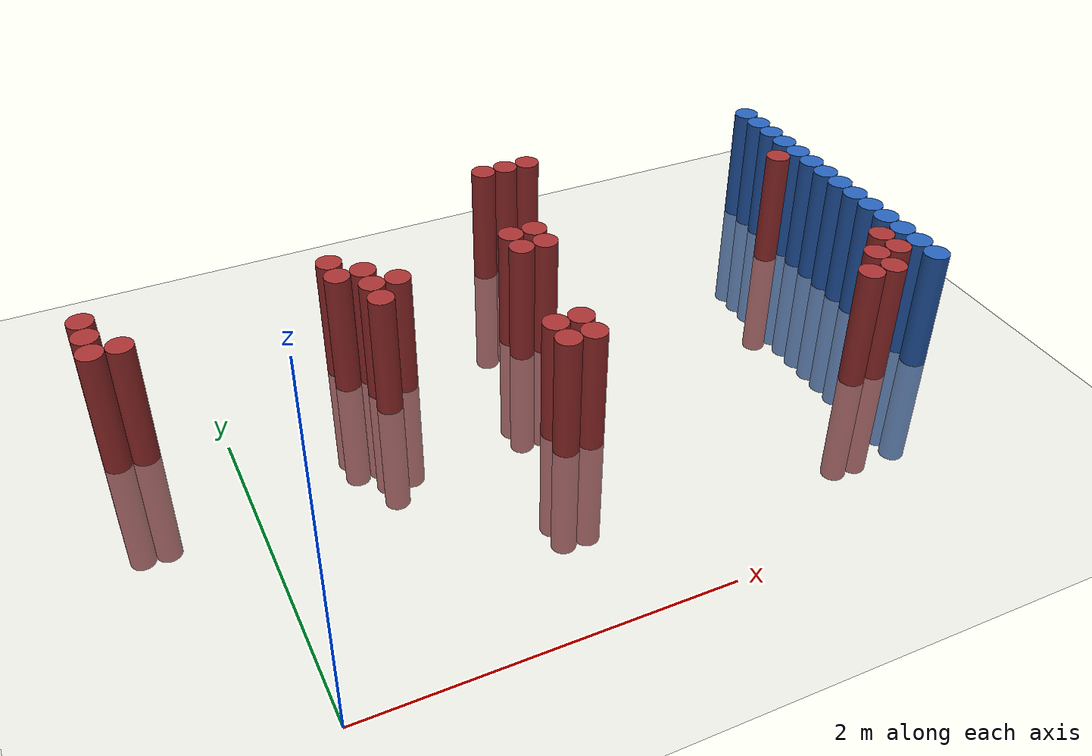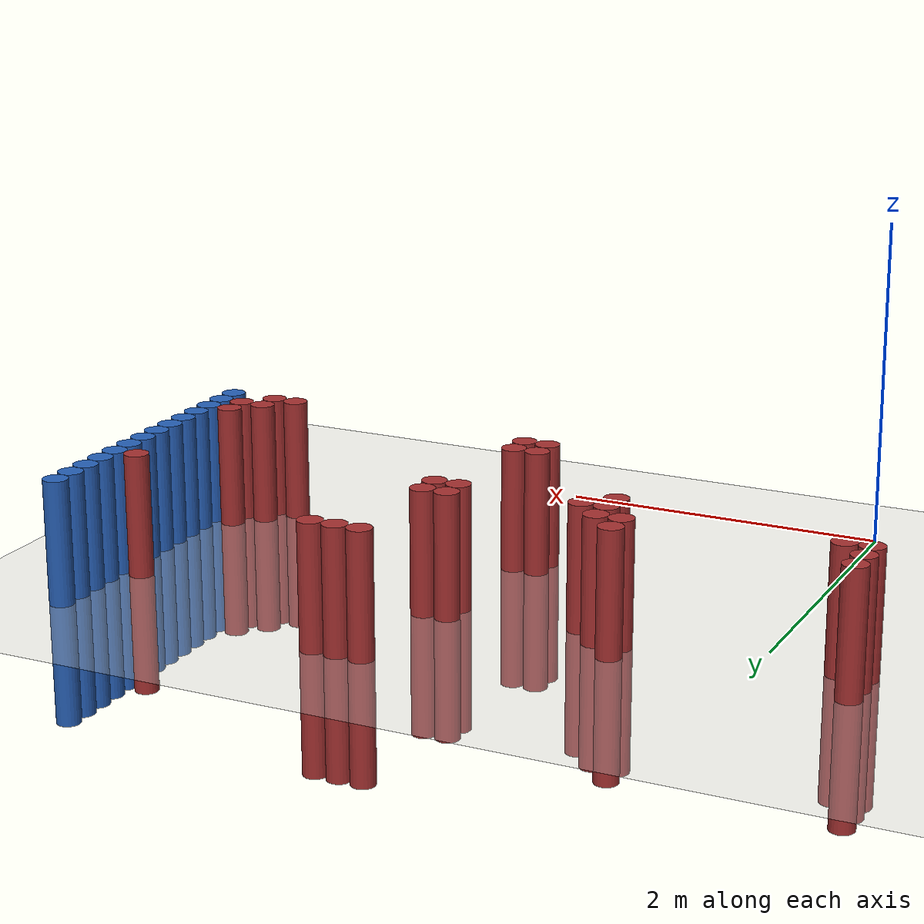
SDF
<sdf version="1.6">
 <world name="default">
  <model name="ground_plane">
   <static>1</static>
   <link name="link">
    <collision name="collision">
     <geometry><plane><normal>0 0 1</normal><size>100 100</size></plane></geometry>
     <surface><friction><ode><mu>100</mu><mu2>50</mu2></ode></friction></surface>
    </collision>
    <visual name="visual">
     <cast_shadows>0</cast_shadows>
     <geometry><plane><normal>0 0 1</normal><size>100 100</size></plane></geometry>
     <material>
      <script><uri>file://media/materials/scripts/gazebo.material</uri><name>Gazebo/Grey</name></script>
     </material>
    </visual>
   </link>
  </model>
  <model name="unit_cylinder_130">
   <static>1</static>
   <pose>3.925000 1.225000 0.000000 0.000000 0.000000 0.000000</pose>
   <link name="link">
    <inertial>
     <mass>1</mass>
     <inertia><ixx>0.145833</ixx><ixy>0</ixy><ixz>0</ixz><iyy>0.145833</iyy><iyz>0</iyz><izz>0.125</izz></inertia>
    </inertial>
    <collision name="collision">
     <geometry><cylinder><radius>0.075000</radius><length>1.5</length></cylinder></geometry>
    </collision>
    <visual name="visual">
     <geometry><cylinder><radius>0.075000</radius><length>1.5</length></cylinder></geometry>
     <material>
      <ambient>0.152000 0.379000 0.720000 1</ambient>
      <diffuse>0.152000 0.379000 0.720000 1</diffuse>
     </material>
     <material>
      <script><name>Gazebo/Grey</name><uri>file://media/materials/scripts/gazebo.material</uri></script>
     </material>
    </visual>
   </link>
  </model>
  <model name="unit_cylinder_132">
   <static>1</static>
   <pose>3.925000 1.375000 0.000000 0.000000 0.000000 0.000000</pose>
   <link name="link">
    <inertial>
     <mass>1</mass>
     <inertia><ixx>0.145833</ixx><ixy>0</ixy><ixz>0</ixz><iyy>0.145833</iyy><iyz>0</iyz><izz>0.125</izz></inertia>
    </inertial>
    <collision name="collision">
     <geometry><cylinder><radius>0.075000</radius><length>1.5</length></cylinder></geometry>
    </collision>
    <visual name="visual">
     <geometry><cylinder><radius>0.075000</radius><length>1.5</length></cylinder></geometry>
     <material>
      <ambient>0.152000 0.379000 0.720000 1</ambient>
      <diffuse>0.152000 0.379000 0.720000 1</diffuse>
     </material>
     <material>
      <script><name>Gazebo/Grey</name><uri>file://media/materials/scripts/gazebo.material</uri></script>
     </material>
    </visual>
   </link>
  </model>
  <model name="unit_cylinder_134">
   <static>1</static>
   <pose>3.925000 1.525000 0.000000 0.000000 0.000000 0.000000</pose>
   <link name="link">
    <inertial>
     <mass>1</mass>
     <inertia><ixx>0.145833</ixx><ixy>0</ixy><ixz>0</ixz><iyy>0.145833</iyy><iyz>0</iyz><izz>0.125</izz></inertia>
    </inertial>
    <collision name="collision">
     <geometry><cylinder><radius>0.075000</radius><length>1.5</length></cylinder></geometry>
    </collision>
    <visual name="visual">
     <geometry><cylinder><radius>0.075000</radius><length>1.5</length></cylinder></geometry>
     <material>
      <ambient>0.152000 0.379000 0.720000 1</ambient>
      <diffuse>0.152000 0.379000 0.720000 1</diffuse>
     </material>
     <material>
      <script><name>Gazebo/Grey</name><uri>file://media/materials/scripts/gazebo.material</uri></script>
     </material>
    </visual>
   </link>
  </model>
  <model name="unit_cylinder_136">
   <static>1</static>
   <pose>3.925000 1.675000 0.000000 0.000000 0.000000 0.000000</pose>
   <link name="link">
    <inertial>
     <mass>1</mass>
     <inertia><ixx>0.145833</ixx><ixy>0</ixy><ixz>0</ixz><iyy>0.145833</iyy><iyz>0</iyz><izz>0.125</izz></inertia>
    </inertial>
    <collision name="collision">
     <geometry><cylinder><radius>0.075000</radius><length>1.5</length></cylinder></geometry>
    </collision>
    <visual name="visual">
     <geometry><cylinder><radius>0.075000</radius><length>1.5</length></cylinder></geometry>
     <material>
      <ambient>0.152000 0.379000 0.720000 1</ambient>
      <diffuse>0.152000 0.379000 0.720000 1</diffuse>
     </material>
     <material>
      <script><name>Gazebo/Grey</name><uri>file://media/materials/scripts/gazebo.material</uri></script>
     </material>
    </visual>
   </link>
  </model>
  <model name="unit_cylinder_138">
   <static>1</static>
   <pose>3.925000 1.825000 0.000000 0.000000 0.000000 0.000000</pose>
   <link name="link">
    <inertial>
     <mass>1</mass>
     <inertia><ixx>0.145833</ixx><ixy>0</ixy><ixz>0</ixz><iyy>0.145833</iyy><iyz>0</iyz><izz>0.125</izz></inertia>
    </inertial>
    <collision name="collision">
     <geometry><cylinder><radius>0.075000</radius><length>1.5</length></cylinder></geometry>
    </collision>
    <visual name="visual">
     <geometry><cylinder><radius>0.075000</radius><length>1.5</length></cylinder></geometry>
     <material>
      <ambient>0.152000 0.379000 0.720000 1</ambient>
      <diffuse>0.152000 0.379000 0.720000 1</diffuse>
     </material>
     <material>
      <script><name>Gazebo/Grey</name><uri>file://media/materials/scripts/gazebo.material</uri></script>
     </material>
    </visual>
   </link>
  </model>
  <model name="unit_cylinder_140">
   <static>1</static>
   <pose>3.925000 1.975000 0.000000 0.000000 0.000000 0.000000</pose>
   <link name="link">
    <inertial>
     <mass>1</mass>
     <inertia><ixx>0.145833</ixx><ixy>0</ixy><ixz>0</ixz><iyy>0.145833</iyy><iyz>0</iyz><izz>0.125</izz></inertia>
    </inertial>
    <collision name="collision">
     <geometry><cylinder><radius>0.075000</radius><length>1.5</length></cylinder></geometry>
    </collision>
    <visual name="visual">
     <geometry><cylinder><radius>0.075000</radius><length>1.5</length></cylinder></geometry>
     <material>
      <ambient>0.152000 0.379000 0.720000 1</ambient>
      <diffuse>0.152000 0.379000 0.720000 1</diffuse>
     </material>
     <material>
      <script><name>Gazebo/Grey</name><uri>file://media/materials/scripts/gazebo.material</uri></script>
     </material>
    </visual>
   </link>
  </model>
  <model name="unit_cylinder_142">
   <static>1</static>
   <pose>3.925000 2.125000 0.000000 0.000000 0.000000 0.000000</pose>
   <link name="link">
    <inertial>
     <mass>1</mass>
     <inertia><ixx>0.145833</ixx><ixy>0</ixy><ixz>0</ixz><iyy>0.145833</iyy><iyz>0</iyz><izz>0.125</izz></inertia>
    </inertial>
    <collision name="collision">
     <geometry><cylinder><radius>0.075000</radius><length>1.5</length></cylinder></geometry>
    </collision>
    <visual name="visual">
     <geometry><cylinder><radius>0.075000</radius><length>1.5</length></cylinder></geometry>
     <material>
      <ambient>0.152000 0.379000 0.720000 1</ambient>
      <diffuse>0.152000 0.379000 0.720000 1</diffuse>
     </material>
     <material>
      <script><name>Gazebo/Grey</name><uri>file://media/materials/scripts/gazebo.material</uri></script>
     </material>
    </visual>
   </link>
  </model>
  <model name="unit_cylinder_144">
   <static>1</static>
   <pose>3.925000 2.275000 0.000000 0.000000 0.000000 0.000000</pose>
   <link name="link">
    <inertial>
     <mass>1</mass>
     <inertia><ixx>0.145833</ixx><ixy>0</ixy><ixz>0</ixz><iyy>0.145833</iyy><iyz>0</iyz><izz>0.125</izz></inertia>
    </inertial>
    <collision name="collision">
     <geometry><cylinder><radius>0.075000</radius><length>1.5</length></cylinder></geometry>
    </collision>
    <visual name="visual">
     <geometry><cylinder><radius>0.075000</radius><length>1.5</length></cylinder></geometry>
     <material>
      <ambient>0.152000 0.379000 0.720000 1</ambient>
      <diffuse>0.152000 0.379000 0.720000 1</diffuse>
     </material>
     <material>
      <script><name>Gazebo/Grey</name><uri>file://media/materials/scripts/gazebo.material</uri></script>
     </material>
    </visual>
   </link>
  </model>
  <model name="unit_cylinder_146">
   <static>1</static>
   <pose>3.925000 2.425000 0.000000 0.000000 0.000000 0.000000</pose>
   <link name="link">
    <inertial>
     <mass>1</mass>
     <inertia><ixx>0.145833</ixx><ixy>0</ixy><ixz>0</ixz><iyy>0.145833</iyy><iyz>0</iyz><izz>0.125</izz></inertia>
    </inertial>
    <collision name="collision">
     <geometry><cylinder><radius>0.075000</radius><length>1.5</length></cylinder></geometry>
    </collision>
    <visual name="visual">
     <geometry><cylinder><radius>0.075000</radius><length>1.5</length></cylinder></geometry>
     <material>
      <ambient>0.152000 0.379000 0.720000 1</ambient>
      <diffuse>0.152000 0.379000 0.720000 1</diffuse>
     </material>
     <material>
      <script><name>Gazebo/Grey</name><uri>file://media/materials/scripts/gazebo.material</uri></script>
     </material>
    </visual>
   </link>
  </model>
  <model name="unit_cylinder_148">
   <static>1</static>
   <pose>3.925000 2.575000 0.000000 0.000000 0.000000 0.000000</pose>
   <link name="link">
    <inertial>
     <mass>1</mass>
     <inertia><ixx>0.145833</ixx><ixy>0</ixy><ixz>0</ixz><iyy>0.145833</iyy><iyz>0</iyz><izz>0.125</izz></inertia>
    </inertial>
    <collision name="collision">
     <geometry><cylinder><radius>0.075000</radius><length>1.5</length></cylinder></geometry>
    </collision>
    <visual name="visual">
     <geometry><cylinder><radius>0.075000</radius><length>1.5</length></cylinder></geometry>
     <material>
      <ambient>0.152000 0.379000 0.720000 1</ambient>
      <diffuse>0.152000 0.379000 0.720000 1</diffuse>
     </material>
     <material>
      <script><name>Gazebo/Grey</name><uri>file://media/materials/scripts/gazebo.material</uri></script>
     </material>
    </visual>
   </link>
  </model>
  <model name="unit_cylinder_150">
   <static>1</static>
   <pose>3.925000 2.725000 0.000000 0.000000 0.000000 0.000000</pose>
   <link name="link">
    <inertial>
     <mass>1</mass>
     <inertia><ixx>0.145833</ixx><ixy>0</ixy><ixz>0</ixz><iyy>0.145833</iyy><iyz>0</iyz><izz>0.125</izz></inertia>
    </inertial>
    <collision name="collision">
     <geometry><cylinder><radius>0.075000</radius><length>1.5</length></cylinder></geometry>
    </collision>
    <visual name="visual">
     <geometry><cylinder><radius>0.075000</radius><length>1.5</length></cylinder></geometry>
     <material>
      <ambient>0.152000 0.379000 0.720000 1</ambient>
      <diffuse>0.152000 0.379000 0.720000 1</diffuse>
     </material>
     <material>
      <script><name>Gazebo/Grey</name><uri>file://media/materials/scripts/gazebo.material</uri></script>
     </material>
    </visual>
   </link>
  </model>
  <model name="unit_cylinder_152">
   <static>1</static>
   <pose>3.925000 2.875000 0.000000 0.000000 0.000000 0.000000</pose>
   <link name="link">
    <inertial>
     <mass>1</mass>
     <inertia><ixx>0.145833</ixx><ixy>0</ixy><ixz>0</ixz><iyy>0.145833</iyy><iyz>0</iyz><izz>0.125</izz></inertia>
    </inertial>
    <collision name="collision">
     <geometry><cylinder><radius>0.075000</radius><length>1.5</length></cylinder></geometry>
    </collision>
    <visual name="visual">
     <geometry><cylinder><radius>0.075000</radius><length>1.5</length></cylinder></geometry>
     <material>
      <ambient>0.152000 0.379000 0.720000 1</ambient>
      <diffuse>0.152000 0.379000 0.720000 1</diffuse>
     </material>
     <material>
      <script><name>Gazebo/Grey</name><uri>file://media/materials/scripts/gazebo.material</uri></script>
     </material>
    </visual>
   </link>
  </model>
  <model name="unit_cylinder_154">
   <static>1</static>
   <pose>3.925000 3.025000 0.000000 0.000000 0.000000 0.000000</pose>
   <link name="link">
    <inertial>
     <mass>1</mass>
     <inertia><ixx>0.145833</ixx><ixy>0</ixy><ixz>0</ixz><iyy>0.145833</iyy><iyz>0</iyz><izz>0.125</izz></inertia>
    </inertial>
    <collision name="collision">
     <geometry><cylinder><radius>0.075000</radius><length>1.5</length></cylinder></geometry>
    </collision>
    <visual name="visual">
     <geometry><cylinder><radius>0.075000</radius><length>1.5</length></cylinder></geometry>
     <material>
      <ambient>0.152000 0.379000 0.720000 1</ambient>
      <diffuse>0.152000 0.379000 0.720000 1</diffuse>
     </material>
     <material>
      <script><name>Gazebo/Grey</name><uri>file://media/materials/scripts/gazebo.material</uri></script>
     </material>
    </visual>
   </link>
  </model>
  <model name="unit_cylinder_336">
   <static>1</static>
   <pose>-0.575000 2.125000 0.000000 0.000000 0.000000 0.000000</pose>
   <link name="link">
    <inertial>
     <mass>1</mass>
     <inertia><ixx>0.145833</ixx><ixy>0</ixy><ixz>0</ixz><iyy>0.145833</iyy><iyz>0</iyz><izz>0.125</izz></inertia>
    </inertial>
    <collision name="collision">
     <geometry><cylinder><radius>0.075000</radius><length>1.5</length></cylinder></geometry>
    </collision>
    <visual name="visual">
     <geometry><cylinder><radius>0.075000</radius><length>1.5</length></cylinder></geometry>
     <material>
      <ambient>0.648000 0.192000 0.192000 1</ambient>
      <diffuse>0.648000 0.192000 0.192000 1</diffuse>
     </material>
     <material>
      <script><name>Gazebo/Grey</name><uri>file://media/materials/scripts/gazebo.material</uri></script>
     </material>
    </visual>
   </link>
  </model>
  <model name="unit_cylinder_337">
   <static>1</static>
   <pose>-0.575000 2.275000 0.000000 0.000000 0.000000 0.000000</pose>
   <link name="link">
    <inertial>
     <mass>1</mass>
     <inertia><ixx>0.145833</ixx><ixy>0</ixy><ixz>0</ixz><iyy>0.145833</iyy><iyz>0</iyz><izz>0.125</izz></inertia>
    </inertial>
    <collision name="collision">
     <geometry><cylinder><radius>0.075000</radius><length>1.5</length></cylinder></geometry>
    </collision>
    <visual name="visual">
     <geometry><cylinder><radius>0.075000</radius><length>1.5</length></cylinder></geometry>
     <material>
      <ambient>0.648000 0.192000 0.192000 1</ambient>
      <diffuse>0.648000 0.192000 0.192000 1</diffuse>
     </material>
     <material>
      <script><name>Gazebo/Grey</name><uri>file://media/materials/scripts/gazebo.material</uri></script>
     </material>
    </visual>
   </link>
  </model>
  <model name="unit_cylinder_338">
   <static>1</static>
   <pose>-0.575000 2.425000 0.000000 0.000000 0.000000 0.000000</pose>
   <link name="link">
    <inertial>
     <mass>1</mass>
     <inertia><ixx>0.145833</ixx><ixy>0</ixy><ixz>0</ixz><iyy>0.145833</iyy><iyz>0</iyz><izz>0.125</izz></inertia>
    </inertial>
    <collision name="collision">
     <geometry><cylinder><radius>0.075000</radius><length>1.5</length></cylinder></geometry>
    </collision>
    <visual name="visual">
     <geometry><cylinder><radius>0.075000</radius><length>1.5</length></cylinder></geometry>
     <material>
      <ambient>0.648000 0.192000 0.192000 1</ambient>
      <diffuse>0.648000 0.192000 0.192000 1</diffuse>
     </material>
     <material>
      <script><name>Gazebo/Grey</name><uri>file://media/materials/scripts/gazebo.material</uri></script>
     </material>
    </visual>
   </link>
  </model>
  <model name="unit_cylinder_342">
   <static>1</static>
   <pose>-0.425000 2.125000 0.000000 0.000000 0.000000 0.000000</pose>
   <link name="link">
    <inertial>
     <mass>1</mass>
     <inertia><ixx>0.145833</ixx><ixy>0</ixy><ixz>0</ixz><iyy>0.145833</iyy><iyz>0</iyz><izz>0.125</izz></inertia>
    </inertial>
    <collision name="collision">
     <geometry><cylinder><radius>0.075000</radius><length>1.5</length></cylinder></geometry>
    </collision>
    <visual name="visual">
     <geometry><cylinder><radius>0.075000</radius><length>1.5</length></cylinder></geometry>
     <material>
      <ambient>0.648000 0.192000 0.192000 1</ambient>
      <diffuse>0.648000 0.192000 0.192000 1</diffuse>
     </material>
     <material>
      <script><name>Gazebo/Grey</name><uri>file://media/materials/scripts/gazebo.material</uri></script>
     </material>
    </visual>
   </link>
  </model>
  <model name="unit_cylinder_356">
   <static>1</static>
   <pose>0.775000 2.275000 0.000000 0.000000 0.000000 0.000000</pose>
   <link name="link">
    <inertial>
     <mass>1</mass>
     <inertia><ixx>0.145833</ixx><ixy>0</ixy><ixz>0</ixz><iyy>0.145833</iyy><iyz>0</iyz><izz>0.125</izz></inertia>
    </inertial>
    <collision name="collision">
     <geometry><cylinder><radius>0.075000</radius><length>1.5</length></cylinder></geometry>
    </collision>
    <visual name="visual">
     <geometry><cylinder><radius>0.075000</radius><length>1.5</length></cylinder></geometry>
     <material>
      <ambient>0.648000 0.192000 0.192000 1</ambient>
      <diffuse>0.648000 0.192000 0.192000 1</diffuse>
     </material>
     <material>
      <script><name>Gazebo/Grey</name><uri>file://media/materials/scripts/gazebo.material</uri></script>
     </material>
    </visual>
   </link>
  </model>
  <model name="unit_cylinder_357">
   <static>1</static>
   <pose>0.775000 2.425000 0.000000 0.000000 0.000000 0.000000</pose>
   <link name="link">
    <inertial>
     <mass>1</mass>
     <inertia><ixx>0.145833</ixx><ixy>0</ixy><ixz>0</ixz><iyy>0.145833</iyy><iyz>0</iyz><izz>0.125</izz></inertia>
    </inertial>
    <collision name="collision">
     <geometry><cylinder><radius>0.075000</radius><length>1.5</length></cylinder></geometry>
    </collision>
    <visual name="visual">
     <geometry><cylinder><radius>0.075000</radius><length>1.5</length></cylinder></geometry>
     <material>
      <ambient>0.648000 0.192000 0.192000 1</ambient>
      <diffuse>0.648000 0.192000 0.192000 1</diffuse>
     </material>
     <material>
      <script><name>Gazebo/Grey</name><uri>file://media/materials/scripts/gazebo.material</uri></script>
     </material>
    </visual>
   </link>
  </model>
  <model name="unit_cylinder_360">
   <static>1</static>
   <pose>0.925000 1.975000 0.000000 0.000000 0.000000 0.000000</pose>
   <link name="link">
    <inertial>
     <mass>1</mass>
     <inertia><ixx>0.145833</ixx><ixy>0</ixy><ixz>0</ixz><iyy>0.145833</iyy><iyz>0</iyz><izz>0.125</izz></inertia>
    </inertial>
    <collision name="collision">
     <geometry><cylinder><radius>0.075000</radius><length>1.5</length></cylinder></geometry>
    </collision>
    <visual name="visual">
     <geometry><cylinder><radius>0.075000</radius><length>1.5</length></cylinder></geometry>
     <material>
      <ambient>0.648000 0.192000 0.192000 1</ambient>
      <diffuse>0.648000 0.192000 0.192000 1</diffuse>
     </material>
     <material>
      <script><name>Gazebo/Grey</name><uri>file://media/materials/scripts/gazebo.material</uri></script>
     </material>
    </visual>
   </link>
  </model>
  <model name="unit_cylinder_361">
   <static>1</static>
   <pose>0.925000 2.125000 0.000000 0.000000 0.000000 0.000000</pose>
   <link name="link">
    <inertial>
     <mass>1</mass>
     <inertia><ixx>0.145833</ixx><ixy>0</ixy><ixz>0</ixz><iyy>0.145833</iyy><iyz>0</iyz><izz>0.125</izz></inertia>
    </inertial>
    <collision name="collision">
     <geometry><cylinder><radius>0.075000</radius><length>1.5</length></cylinder></geometry>
    </collision>
    <visual name="visual">
     <geometry><cylinder><radius>0.075000</radius><length>1.5</length></cylinder></geometry>
     <material>
      <ambient>0.648000 0.192000 0.192000 1</ambient>
      <diffuse>0.648000 0.192000 0.192000 1</diffuse>
     </material>
     <material>
      <script><name>Gazebo/Grey</name><uri>file://media/materials/scripts/gazebo.material</uri></script>
     </material>
    </visual>
   </link>
  </model>
  <model name="unit_cylinder_362">
   <static>1</static>
   <pose>0.925000 2.275000 0.000000 0.000000 0.000000 0.000000</pose>
   <link name="link">
    <inertial>
     <mass>1</mass>
     <inertia><ixx>0.145833</ixx><ixy>0</ixy><ixz>0</ixz><iyy>0.145833</iyy><iyz>0</iyz><izz>0.125</izz></inertia>
    </inertial>
    <collision name="collision">
     <geometry><cylinder><radius>0.075000</radius><length>1.5</length></cylinder></geometry>
    </collision>
    <visual name="visual">
     <geometry><cylinder><radius>0.075000</radius><length>1.5</length></cylinder></geometry>
     <material>
      <ambient>0.648000 0.192000 0.192000 1</ambient>
      <diffuse>0.648000 0.192000 0.192000 1</diffuse>
     </material>
     <material>
      <script><name>Gazebo/Grey</name><uri>file://media/materials/scripts/gazebo.material</uri></script>
     </material>
    </visual>
   </link>
  </model>
  <model name="unit_cylinder_365">
   <static>1</static>
   <pose>1.075000 2.125000 0.000000 0.000000 0.000000 0.000000</pose>
   <link name="link">
    <inertial>
     <mass>1</mass>
     <inertia><ixx>0.145833</ixx><ixy>0</ixy><ixz>0</ixz><iyy>0.145833</iyy><iyz>0</iyz><izz>0.125</izz></inertia>
    </inertial>
    <collision name="collision">
     <geometry><cylinder><radius>0.075000</radius><length>1.5</length></cylinder></geometry>
    </collision>
    <visual name="visual">
     <geometry><cylinder><radius>0.075000</radius><length>1.5</length></cylinder></geometry>
     <material>
      <ambient>0.648000 0.192000 0.192000 1</ambient>
      <diffuse>0.648000 0.192000 0.192000 1</diffuse>
     </material>
     <material>
      <script><name>Gazebo/Grey</name><uri>file://media/materials/scripts/gazebo.material</uri></script>
     </material>
    </visual>
   </link>
  </model>
  <model name="unit_cylinder_381">
   <static>1</static>
   <pose>1.675000 1.225000 0.000000 0.000000 0.000000 0.000000</pose>
   <link name="link">
    <inertial>
     <mass>1</mass>
     <inertia><ixx>0.145833</ixx><ixy>0</ixy><ixz>0</ixz><iyy>0.145833</iyy><iyz>0</iyz><izz>0.125</izz></inertia>
    </inertial>
    <collision name="collision">
     <geometry><cylinder><radius>0.075000</radius><length>1.5</length></cylinder></geometry>
    </collision>
    <visual name="visual">
     <geometry><cylinder><radius>0.075000</radius><length>1.5</length></cylinder></geometry>
     <material>
      <ambient>0.648000 0.192000 0.192000 1</ambient>
      <diffuse>0.648000 0.192000 0.192000 1</diffuse>
     </material>
     <material>
      <script><name>Gazebo/Grey</name><uri>file://media/materials/scripts/gazebo.material</uri></script>
     </material>
    </visual>
   </link>
  </model>
  <model name="unit_cylinder_382">
   <static>1</static>
   <pose>1.675000 1.375000 0.000000 0.000000 0.000000 0.000000</pose>
   <link name="link">
    <inertial>
     <mass>1</mass>
     <inertia><ixx>0.145833</ixx><ixy>0</ixy><ixz>0</ixz><iyy>0.145833</iyy><iyz>0</iyz><izz>0.125</izz></inertia>
    </inertial>
    <collision name="collision">
     <geometry><cylinder><radius>0.075000</radius><length>1.5</length></cylinder></geometry>
    </collision>
    <visual name="visual">
     <geometry><cylinder><radius>0.075000</radius><length>1.5</length></cylinder></geometry>
     <material>
      <ambient>0.648000 0.192000 0.192000 1</ambient>
      <diffuse>0.648000 0.192000 0.192000 1</diffuse>
     </material>
     <material>
      <script><name>Gazebo/Grey</name><uri>file://media/materials/scripts/gazebo.material</uri></script>
     </material>
    </visual>
   </link>
  </model>
  <model name="unit_cylinder_386">
   <static>1</static>
   <pose>1.825000 1.225000 0.000000 0.000000 0.000000 0.000000</pose>
   <link name="link">
    <inertial>
     <mass>1</mass>
     <inertia><ixx>0.145833</ixx><ixy>0</ixy><ixz>0</ixz><iyy>0.145833</iyy><iyz>0</iyz><izz>0.125</izz></inertia>
    </inertial>
    <collision name="collision">
     <geometry><cylinder><radius>0.075000</radius><length>1.5</length></cylinder></geometry>
    </collision>
    <visual name="visual">
     <geometry><cylinder><radius>0.075000</radius><length>1.5</length></cylinder></geometry>
     <material>
      <ambient>0.648000 0.192000 0.192000 1</ambient>
      <diffuse>0.648000 0.192000 0.192000 1</diffuse>
     </material>
     <material>
      <script><name>Gazebo/Grey</name><uri>file://media/materials/scripts/gazebo.material</uri></script>
     </material>
    </visual>
   </link>
  </model>
  <model name="unit_cylinder_387">
   <static>1</static>
   <pose>1.825000 1.375000 0.000000 0.000000 0.000000 0.000000</pose>
   <link name="link">
    <inertial>
     <mass>1</mass>
     <inertia><ixx>0.145833</ixx><ixy>0</ixy><ixz>0</ixz><iyy>0.145833</iyy><iyz>0</iyz><izz>0.125</izz></inertia>
    </inertial>
    <collision name="collision">
     <geometry><cylinder><radius>0.075000</radius><length>1.5</length></cylinder></geometry>
    </collision>
    <visual name="visual">
     <geometry><cylinder><radius>0.075000</radius><length>1.5</length></cylinder></geometry>
     <material>
      <ambient>0.648000 0.192000 0.192000 1</ambient>
      <diffuse>0.648000 0.192000 0.192000 1</diffuse>
     </material>
     <material>
      <script><name>Gazebo/Grey</name><uri>file://media/materials/scripts/gazebo.material</uri></script>
     </material>
    </visual>
   </link>
  </model>
  <model name="unit_cylinder_388">
   <static>1</static>
   <pose>1.825000 2.125000 0.000000 0.000000 0.000000 0.000000</pose>
   <link name="link">
    <inertial>
     <mass>1</mass>
     <inertia><ixx>0.145833</ixx><ixy>0</ixy><ixz>0</ixz><iyy>0.145833</iyy><iyz>0</iyz><izz>0.125</izz></inertia>
    </inertial>
    <collision name="collision">
     <geometry><cylinder><radius>0.075000</radius><length>1.5</length></cylinder></geometry>
    </collision>
    <visual name="visual">
     <geometry><cylinder><radius>0.075000</radius><length>1.5</length></cylinder></geometry>
     <material>
      <ambient>0.648000 0.192000 0.192000 1</ambient>
      <diffuse>0.648000 0.192000 0.192000 1</diffuse>
     </material>
     <material>
      <script><name>Gazebo/Grey</name><uri>file://media/materials/scripts/gazebo.material</uri></script>
     </material>
    </visual>
   </link>
  </model>
  <model name="unit_cylinder_389">
   <static>1</static>
   <pose>1.825000 2.275000 0.000000 0.000000 0.000000 0.000000</pose>
   <link name="link">
    <inertial>
     <mass>1</mass>
     <inertia><ixx>0.145833</ixx><ixy>0</ixy><ixz>0</ixz><iyy>0.145833</iyy><iyz>0</iyz><izz>0.125</izz></inertia>
    </inertial>
    <collision name="collision">
     <geometry><cylinder><radius>0.075000</radius><length>1.5</length></cylinder></geometry>
    </collision>
    <visual name="visual">
     <geometry><cylinder><radius>0.075000</radius><length>1.5</length></cylinder></geometry>
     <material>
      <ambient>0.648000 0.192000 0.192000 1</ambient>
      <diffuse>0.648000 0.192000 0.192000 1</diffuse>
     </material>
     <material>
      <script><name>Gazebo/Grey</name><uri>file://media/materials/scripts/gazebo.material</uri></script>
     </material>
    </visual>
   </link>
  </model>
  <model name="unit_cylinder_395">
   <static>1</static>
   <pose>1.975000 2.125000 0.000000 0.000000 0.000000 0.000000</pose>
   <link name="link">
    <inertial>
     <mass>1</mass>
     <inertia><ixx>0.145833</ixx><ixy>0</ixy><ixz>0</ixz><iyy>0.145833</iyy><iyz>0</iyz><izz>0.125</izz></inertia>
    </inertial>
    <collision name="collision">
     <geometry><cylinder><radius>0.075000</radius><length>1.5</length></cylinder></geometry>
    </collision>
    <visual name="visual">
     <geometry><cylinder><radius>0.075000</radius><length>1.5</length></cylinder></geometry>
     <material>
      <ambient>0.648000 0.192000 0.192000 1</ambient>
      <diffuse>0.648000 0.192000 0.192000 1</diffuse>
     </material>
     <material>
      <script><name>Gazebo/Grey</name><uri>file://media/materials/scripts/gazebo.material</uri></script>
     </material>
    </visual>
   </link>
  </model>
  <model name="unit_cylinder_396">
   <static>1</static>
   <pose>1.975000 2.275000 0.000000 0.000000 0.000000 0.000000</pose>
   <link name="link">
    <inertial>
     <mass>1</mass>
     <inertia><ixx>0.145833</ixx><ixy>0</ixy><ixz>0</ixz><iyy>0.145833</iyy><iyz>0</iyz><izz>0.125</izz></inertia>
    </inertial>
    <collision name="collision">
     <geometry><cylinder><radius>0.075000</radius><length>1.5</length></cylinder></geometry>
    </collision>
    <visual name="visual">
     <geometry><cylinder><radius>0.075000</radius><length>1.5</length></cylinder></geometry>
     <material>
      <ambient>0.648000 0.192000 0.192000 1</ambient>
      <diffuse>0.648000 0.192000 0.192000 1</diffuse>
     </material>
     <material>
      <script><name>Gazebo/Grey</name><uri>file://media/materials/scripts/gazebo.material</uri></script>
     </material>
    </visual>
   </link>
  </model>
  <model name="unit_cylinder_397">
   <static>1</static>
   <pose>1.975000 3.025000 0.000000 0.000000 0.000000 0.000000</pose>
   <link name="link">
    <inertial>
     <mass>1</mass>
     <inertia><ixx>0.145833</ixx><ixy>0</ixy><ixz>0</ixz><iyy>0.145833</iyy><iyz>0</iyz><izz>0.125</izz></inertia>
    </inertial>
    <collision name="collision">
     <geometry><cylinder><radius>0.075000</radius><length>1.5</length></cylinder></geometry>
    </collision>
    <visual name="visual">
     <geometry><cylinder><radius>0.075000</radius><length>1.5</length></cylinder></geometry>
     <material>
      <ambient>0.648000 0.192000 0.192000 1</ambient>
      <diffuse>0.648000 0.192000 0.192000 1</diffuse>
     </material>
     <material>
      <script><name>Gazebo/Grey</name><uri>file://media/materials/scripts/gazebo.material</uri></script>
     </material>
    </visual>
   </link>
  </model>
  <model name="unit_cylinder_401">
   <static>1</static>
   <pose>2.125000 3.025000 0.000000 0.000000 0.000000 0.000000</pose>
   <link name="link">
    <inertial>
     <mass>1</mass>
     <inertia><ixx>0.145833</ixx><ixy>0</ixy><ixz>0</ixz><iyy>0.145833</iyy><iyz>0</iyz><izz>0.125</izz></inertia>
    </inertial>
    <collision name="collision">
     <geometry><cylinder><radius>0.075000</radius><length>1.5</length></cylinder></geometry>
    </collision>
    <visual name="visual">
     <geometry><cylinder><radius>0.075000</radius><length>1.5</length></cylinder></geometry>
     <material>
      <ambient>0.648000 0.192000 0.192000 1</ambient>
      <diffuse>0.648000 0.192000 0.192000 1</diffuse>
     </material>
     <material>
      <script><name>Gazebo/Grey</name><uri>file://media/materials/scripts/gazebo.material</uri></script>
     </material>
    </visual>
   </link>
  </model>
  <model name="unit_cylinder_405">
   <static>1</static>
   <pose>2.275000 3.025000 0.000000 0.000000 0.000000 0.000000</pose>
   <link name="link">
    <inertial>
     <mass>1</mass>
     <inertia><ixx>0.145833</ixx><ixy>0</ixy><ixz>0</ixz><iyy>0.145833</iyy><iyz>0</iyz><izz>0.125</izz></inertia>
    </inertial>
    <collision name="collision">
     <geometry><cylinder><radius>0.075000</radius><length>1.5</length></cylinder></geometry>
    </collision>
    <visual name="visual">
     <geometry><cylinder><radius>0.075000</radius><length>1.5</length></cylinder></geometry>
     <material>
      <ambient>0.648000 0.192000 0.192000 1</ambient>
      <diffuse>0.648000 0.192000 0.192000 1</diffuse>
     </material>
     <material>
      <script><name>Gazebo/Grey</name><uri>file://media/materials/scripts/gazebo.material</uri></script>
     </material>
    </visual>
   </link>
  </model>
  <model name="unit_cylinder_442">
   <static>1</static>
   <pose>3.475000 1.075000 0.000000 0.000000 0.000000 0.000000</pose>
   <link name="link">
    <inertial>
     <mass>1</mass>
     <inertia><ixx>0.145833</ixx><ixy>0</ixy><ixz>0</ixz><iyy>0.145833</iyy><iyz>0</iyz><izz>0.125</izz></inertia>
    </inertial>
    <collision name="collision">
     <geometry><cylinder><radius>0.075000</radius><length>1.5</length></cylinder></geometry>
    </collision>
    <visual name="visual">
     <geometry><cylinder><radius>0.075000</radius><length>1.5</length></cylinder></geometry>
     <material>
      <ambient>0.648000 0.192000 0.192000 1</ambient>
      <diffuse>0.648000 0.192000 0.192000 1</diffuse>
     </material>
     <material>
      <script><name>Gazebo/Grey</name><uri>file://media/materials/scripts/gazebo.material</uri></script>
     </material>
    </visual>
   </link>
  </model>
  <model name="unit_cylinder_450">
   <static>1</static>
   <pose>3.625000 1.075000 0.000000 0.000000 0.000000 0.000000</pose>
   <link name="link">
    <inertial>
     <mass>1</mass>
     <inertia><ixx>0.145833</ixx><ixy>0</ixy><ixz>0</ixz><iyy>0.145833</iyy><iyz>0</iyz><izz>0.125</izz></inertia>
    </inertial>
    <collision name="collision">
     <geometry><cylinder><radius>0.075000</radius><length>1.5</length></cylinder></geometry>
    </collision>
    <visual name="visual">
     <geometry><cylinder><radius>0.075000</radius><length>1.5</length></cylinder></geometry>
     <material>
      <ambient>0.648000 0.192000 0.192000 1</ambient>
      <diffuse>0.648000 0.192000 0.192000 1</diffuse>
     </material>
     <material>
      <script><name>Gazebo/Grey</name><uri>file://media/materials/scripts/gazebo.material</uri></script>
     </material>
    </visual>
   </link>
  </model>
  <model name="unit_cylinder_451">
   <static>1</static>
   <pose>3.625000 1.225000 0.000000 0.000000 0.000000 0.000000</pose>
   <link name="link">
    <inertial>
     <mass>1</mass>
     <inertia><ixx>0.145833</ixx><ixy>0</ixy><ixz>0</ixz><iyy>0.145833</iyy><iyz>0</iyz><izz>0.125</izz></inertia>
    </inertial>
    <collision name="collision">
     <geometry><cylinder><radius>0.075000</radius><length>1.5</length></cylinder></geometry>
    </collision>
    <visual name="visual">
     <geometry><cylinder><radius>0.075000</radius><length>1.5</length></cylinder></geometry>
     <material>
      <ambient>0.648000 0.192000 0.192000 1</ambient>
      <diffuse>0.648000 0.192000 0.192000 1</diffuse>
     </material>
     <material>
      <script><name>Gazebo/Grey</name><uri>file://media/materials/scripts/gazebo.material</uri></script>
     </material>
    </visual>
   </link>
  </model>
  <model name="unit_cylinder_464">
   <static>1</static>
   <pose>3.775000 1.225000 0.000000 0.000000 0.000000 0.000000</pose>
   <link name="link">
    <inertial>
     <mass>1</mass>
     <inertia><ixx>0.145833</ixx><ixy>0</ixy><ixz>0</ixz><iyy>0.145833</iyy><iyz>0</iyz><izz>0.125</izz></inertia>
    </inertial>
    <collision name="collision">
     <geometry><cylinder><radius>0.075000</radius><length>1.5</length></cylinder></geometry>
    </collision>
    <visual name="visual">
     <geometry><cylinder><radius>0.075000</radius><length>1.5</length></cylinder></geometry>
     <material>
      <ambient>0.648000 0.192000 0.192000 1</ambient>
      <diffuse>0.648000 0.192000 0.192000 1</diffuse>
     </material>
     <material>
      <script><name>Gazebo/Grey</name><uri>file://media/materials/scripts/gazebo.material</uri></script>
     </material>
    </visual>
   </link>
  </model>
  <model name="unit_cylinder_465">
   <static>1</static>
   <pose>3.775000 1.375000 0.000000 0.000000 0.000000 0.000000</pose>
   <link name="link">
    <inertial>
     <mass>1</mass>
     <inertia><ixx>0.145833</ixx><ixy>0</ixy><ixz>0</ixz><iyy>0.145833</iyy><iyz>0</iyz><izz>0.125</izz></inertia>
    </inertial>
    <collision name="collision">
     <geometry><cylinder><radius>0.075000</radius><length>1.5</length></cylinder></geometry>
    </collision>
    <visual name="visual">
     <geometry><cylinder><radius>0.075000</radius><length>1.5</length></cylinder></geometry>
     <material>
      <ambient>0.648000 0.192000 0.192000 1</ambient>
      <diffuse>0.648000 0.192000 0.192000 1</diffuse>
     </material>
     <material>
      <script><name>Gazebo/Grey</name><uri>file://media/materials/scripts/gazebo.material</uri></script>
     </material>
    </visual>
   </link>
  </model>
  <model name="unit_cylinder_466">
   <static>1</static>
   <pose>3.775000 2.425000 0.000000 0.000000 0.000000 0.000000</pose>
   <link name="link">
    <inertial>
     <mass>1</mass>
     <inertia><ixx>0.145833</ixx><ixy>0</ixy><ixz>0</ixz><iyy>0.145833</iyy><iyz>0</iyz><izz>0.125</izz></inertia>
    </inertial>
    <collision name="collision">
     <geometry><cylinder><radius>0.075000</radius><length>1.5</length></cylinder></geometry>
    </collision>
    <visual name="visual">
     <geometry><cylinder><radius>0.075000</radius><length>1.5</length></cylinder></geometry>
     <material>
      <ambient>0.648000 0.192000 0.192000 1</ambient>
      <diffuse>0.648000 0.192000 0.192000 1</diffuse>
     </material>
     <material>
      <script><name>Gazebo/Grey</name><uri>file://media/materials/scripts/gazebo.material</uri></script>
     </material>
    </visual>
   </link>
  </model>
  <model name="unit_cylinder_498">
   <static>1</static>
   <pose>3.925000 1.075000 0.000000 0.000000 0.000000 0.000000</pose>
   <link name="link">
    <inertial>
     <mass>1</mass>
     <inertia><ixx>0.145833</ixx><ixy>0</ixy><ixz>0</ixz><iyy>0.145833</iyy><iyz>0</iyz><izz>0.125</izz></inertia>
    </inertial>
    <collision name="collision">
     <geometry><cylinder><radius>0.075000</radius><length>1.5</length></cylinder></geometry>
    </collision>
    <visual name="visual">
     <geometry><cylinder><radius>0.075000</radius><length>1.5</length></cylinder></geometry>
     <material>
      <ambient>0.152000 0.379000 0.720000 1</ambient>
      <diffuse>0.152000 0.379000 0.720000 1</diffuse>
     </material>
     <material>
      <script><name>Gazebo/Grey</name><uri>file://media/materials/scripts/gazebo.material</uri></script>
     </material>
    </visual>
   </link>
  </model>
  <model name="unit_cylinder_499">
   <static>1</static>
   <pose>3.925000 1.225000 0.000000 0.000000 0.000000 0.000000</pose>
   <link name="link">
    <inertial>
     <mass>1</mass>
     <inertia><ixx>0.145833</ixx><ixy>0</ixy><ixz>0</ixz><iyy>0.145833</iyy><iyz>0</iyz><izz>0.125</izz></inertia>
    </inertial>
    <collision name="collision">
     <geometry><cylinder><radius>0.075000</radius><length>1.5</length></cylinder></geometry>
    </collision>
    <visual name="visual">
     <geometry><cylinder><radius>0.075000</radius><length>1.5</length></cylinder></geometry>
     <material>
      <ambient>0.152000 0.379000 0.720000 1</ambient>
      <diffuse>0.152000 0.379000 0.720000 1</diffuse>
     </material>
     <material>
      <script><name>Gazebo/Grey</name><uri>file://media/materials/scripts/gazebo.material</uri></script>
     </material>
    </visual>
   </link>
  </model>
  <model name="unit_cylinder_500">
   <static>1</static>
   <pose>3.925000 1.375000 0.000000 0.000000 0.000000 0.000000</pose>
   <link name="link">
    <inertial>
     <mass>1</mass>
     <inertia><ixx>0.145833</ixx><ixy>0</ixy><ixz>0</ixz><iyy>0.145833</iyy><iyz>0</iyz><izz>0.125</izz></inertia>
    </inertial>
    <collision name="collision">
     <geometry><cylinder><radius>0.075000</radius><length>1.5</length></cylinder></geometry>
    </collision>
    <visual name="visual">
     <geometry><cylinder><radius>0.075000</radius><length>1.5</length></cylinder></geometry>
     <material>
      <ambient>0.152000 0.379000 0.720000 1</ambient>
      <diffuse>0.152000 0.379000 0.720000 1</diffuse>
     </material>
     <material>
      <script><name>Gazebo/Grey</name><uri>file://media/materials/scripts/gazebo.material</uri></script>
     </material>
    </visual>
   </link>
  </model>
  <model name="unit_cylinder_501">
   <static>1</static>
   <pose>3.925000 1.525000 0.000000 0.000000 0.000000 0.000000</pose>
   <link name="link">
    <inertial>
     <mass>1</mass>
     <inertia><ixx>0.145833</ixx><ixy>0</ixy><ixz>0</ixz><iyy>0.145833</iyy><iyz>0</iyz><izz>0.125</izz></inertia>
    </inertial>
    <collision name="collision">
     <geometry><cylinder><radius>0.075000</radius><length>1.5</length></cylinder></geometry>
    </collision>
    <visual name="visual">
     <geometry><cylinder><radius>0.075000</radius><length>1.5</length></cylinder></geometry>
     <material>
      <ambient>0.152000 0.379000 0.720000 1</ambient>
      <diffuse>0.152000 0.379000 0.720000 1</diffuse>
     </material>
     <material>
      <script><name>Gazebo/Grey</name><uri>file://media/materials/scripts/gazebo.material</uri></script>
     </material>
    </visual>
   </link>
  </model>
  <model name="unit_cylinder_502">
   <static>1</static>
   <pose>3.925000 1.675000 0.000000 0.000000 0.000000 0.000000</pose>
   <link name="link">
    <inertial>
     <mass>1</mass>
     <inertia><ixx>0.145833</ixx><ixy>0</ixy><ixz>0</ixz><iyy>0.145833</iyy><iyz>0</iyz><izz>0.125</izz></inertia>
    </inertial>
    <collision name="collision">
     <geometry><cylinder><radius>0.075000</radius><length>1.5</length></cylinder></geometry>
    </collision>
    <visual name="visual">
     <geometry><cylinder><radius>0.075000</radius><length>1.5</length></cylinder></geometry>
     <material>
      <ambient>0.152000 0.379000 0.720000 1</ambient>
      <diffuse>0.152000 0.379000 0.720000 1</diffuse>
     </material>
     <material>
      <script><name>Gazebo/Grey</name><uri>file://media/materials/scripts/gazebo.material</uri></script>
     </material>
    </visual>
   </link>
  </model>
  <model name="unit_cylinder_503">
   <static>1</static>
   <pose>3.925000 1.825000 0.000000 0.000000 0.000000 0.000000</pose>
   <link name="link">
    <inertial>
     <mass>1</mass>
     <inertia><ixx>0.145833</ixx><ixy>0</ixy><ixz>0</ixz><iyy>0.145833</iyy><iyz>0</iyz><izz>0.125</izz></inertia>
    </inertial>
    <collision name="collision">
     <geometry><cylinder><radius>0.075000</radius><length>1.5</length></cylinder></geometry>
    </collision>
    <visual name="visual">
     <geometry><cylinder><radius>0.075000</radius><length>1.5</length></cylinder></geometry>
     <material>
      <ambient>0.152000 0.379000 0.720000 1</ambient>
      <diffuse>0.152000 0.379000 0.720000 1</diffuse>
     </material>
     <material>
      <script><name>Gazebo/Grey</name><uri>file://media/materials/scripts/gazebo.material</uri></script>
     </material>
    </visual>
   </link>
  </model>
  <model name="unit_cylinder_504">
   <static>1</static>
   <pose>3.925000 1.975000 0.000000 0.000000 0.000000 0.000000</pose>
   <link name="link">
    <inertial>
     <mass>1</mass>
     <inertia><ixx>0.145833</ixx><ixy>0</ixy><ixz>0</ixz><iyy>0.145833</iyy><iyz>0</iyz><izz>0.125</izz></inertia>
    </inertial>
    <collision name="collision">
     <geometry><cylinder><radius>0.075000</radius><length>1.5</length></cylinder></geometry>
    </collision>
    <visual name="visual">
     <geometry><cylinder><radius>0.075000</radius><length>1.5</length></cylinder></geometry>
     <material>
      <ambient>0.152000 0.379000 0.720000 1</ambient>
      <diffuse>0.152000 0.379000 0.720000 1</diffuse>
     </material>
     <material>
      <script><name>Gazebo/Grey</name><uri>file://media/materials/scripts/gazebo.material</uri></script>
     </material>
    </visual>
   </link>
  </model>
  <model name="unit_cylinder_505">
   <static>1</static>
   <pose>3.925000 2.125000 0.000000 0.000000 0.000000 0.000000</pose>
   <link name="link">
    <inertial>
     <mass>1</mass>
     <inertia><ixx>0.145833</ixx><ixy>0</ixy><ixz>0</ixz><iyy>0.145833</iyy><iyz>0</iyz><izz>0.125</izz></inertia>
    </inertial>
    <collision name="collision">
     <geometry><cylinder><radius>0.075000</radius><length>1.5</length></cylinder></geometry>
    </collision>
    <visual name="visual">
     <geometry><cylinder><radius>0.075000</radius><length>1.5</length></cylinder></geometry>
     <material>
      <ambient>0.152000 0.379000 0.720000 1</ambient>
      <diffuse>0.152000 0.379000 0.720000 1</diffuse>
     </material>
     <material>
      <script><name>Gazebo/Grey</name><uri>file://media/materials/scripts/gazebo.material</uri></script>
     </material>
    </visual>
   </link>
  </model>
  <model name="unit_cylinder_506">
   <static>1</static>
   <pose>3.925000 2.275000 0.000000 0.000000 0.000000 0.000000</pose>
   <link name="link">
    <inertial>
     <mass>1</mass>
     <inertia><ixx>0.145833</ixx><ixy>0</ixy><ixz>0</ixz><iyy>0.145833</iyy><iyz>0</iyz><izz>0.125</izz></inertia>
    </inertial>
    <collision name="collision">
     <geometry><cylinder><radius>0.075000</radius><length>1.5</length></cylinder></geometry>
    </collision>
    <visual name="visual">
     <geometry><cylinder><radius>0.075000</radius><length>1.5</length></cylinder></geometry>
     <material>
      <ambient>0.152000 0.379000 0.720000 1</ambient>
      <diffuse>0.152000 0.379000 0.720000 1</diffuse>
     </material>
     <material>
      <script><name>Gazebo/Grey</name><uri>file://media/materials/scripts/gazebo.material</uri></script>
     </material>
    </visual>
   </link>
  </model>
  <model name="unit_cylinder_507">
   <static>1</static>
   <pose>3.925000 2.425000 0.000000 0.000000 0.000000 0.000000</pose>
   <link name="link">
    <inertial>
     <mass>1</mass>
     <inertia><ixx>0.145833</ixx><ixy>0</ixy><ixz>0</ixz><iyy>0.145833</iyy><iyz>0</iyz><izz>0.125</izz></inertia>
    </inertial>
    <collision name="collision">
     <geometry><cylinder><radius>0.075000</radius><length>1.5</length></cylinder></geometry>
    </collision>
    <visual name="visual">
     <geometry><cylinder><radius>0.075000</radius><length>1.5</length></cylinder></geometry>
     <material>
      <ambient>0.152000 0.379000 0.720000 1</ambient>
      <diffuse>0.152000 0.379000 0.720000 1</diffuse>
     </material>
     <material>
      <script><name>Gazebo/Grey</name><uri>file://media/materials/scripts/gazebo.material</uri></script>
     </material>
    </visual>
   </link>
  </model>
  <model name="unit_cylinder_508">
   <static>1</static>
   <pose>3.925000 2.575000 0.000000 0.000000 0.000000 0.000000</pose>
   <link name="link">
    <inertial>
     <mass>1</mass>
     <inertia><ixx>0.145833</ixx><ixy>0</ixy><ixz>0</ixz><iyy>0.145833</iyy><iyz>0</iyz><izz>0.125</izz></inertia>
    </inertial>
    <collision name="collision">
     <geometry><cylinder><radius>0.075000</radius><length>1.5</length></cylinder></geometry>
    </collision>
    <visual name="visual">
     <geometry><cylinder><radius>0.075000</radius><length>1.5</length></cylinder></geometry>
     <material>
      <ambient>0.152000 0.379000 0.720000 1</ambient>
      <diffuse>0.152000 0.379000 0.720000 1</diffuse>
     </material>
     <material>
      <script><name>Gazebo/Grey</name><uri>file://media/materials/scripts/gazebo.material</uri></script>
     </material>
    </visual>
   </link>
  </model>
  <model name="unit_cylinder_509">
   <static>1</static>
   <pose>3.925000 2.725000 0.000000 0.000000 0.000000 0.000000</pose>
   <link name="link">
    <inertial>
     <mass>1</mass>
     <inertia><ixx>0.145833</ixx><ixy>0</ixy><ixz>0</ixz><iyy>0.145833</iyy><iyz>0</iyz><izz>0.125</izz></inertia>
    </inertial>
    <collision name="collision">
     <geometry><cylinder><radius>0.075000</radius><length>1.5</length></cylinder></geometry>
    </collision>
    <visual name="visual">
     <geometry><cylinder><radius>0.075000</radius><length>1.5</length></cylinder></geometry>
     <material>
      <ambient>0.152000 0.379000 0.720000 1</ambient>
      <diffuse>0.152000 0.379000 0.720000 1</diffuse>
     </material>
     <material>
      <script><name>Gazebo/Grey</name><uri>file://media/materials/scripts/gazebo.material</uri></script>
     </material>
    </visual>
   </link>
  </model>
  <model name="unit_cylinder_510">
   <static>1</static>
   <pose>3.925000 2.875000 0.000000 0.000000 0.000000 0.000000</pose>
   <link name="link">
    <inertial>
     <mass>1</mass>
     <inertia><ixx>0.145833</ixx><ixy>0</ixy><ixz>0</ixz><iyy>0.145833</iyy><iyz>0</iyz><izz>0.125</izz></inertia>
    </inertial>
    <collision name="collision">
     <geometry><cylinder><radius>0.075000</radius><length>1.5</length></cylinder></geometry>
    </collision>
    <visual name="visual">
     <geometry><cylinder><radius>0.075000</radius><length>1.5</length></cylinder></geometry>
     <material>
      <ambient>0.152000 0.379000 0.720000 1</ambient>
      <diffuse>0.152000 0.379000 0.720000 1</diffuse>
     </material>
     <material>
      <script><name>Gazebo/Grey</name><uri>file://media/materials/scripts/gazebo.material</uri></script>
     </material>
    </visual>
   </link>
  </model>
 </world>
</sdf>
